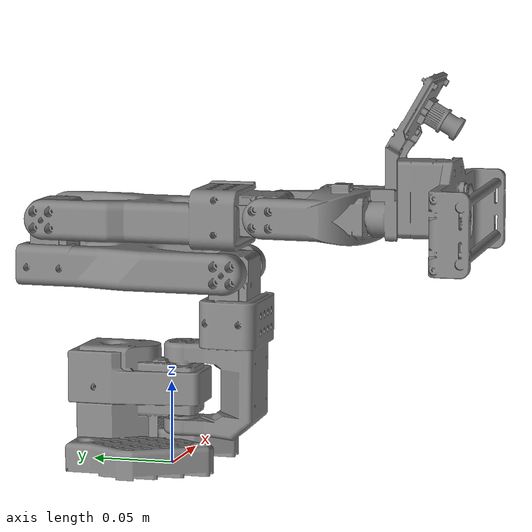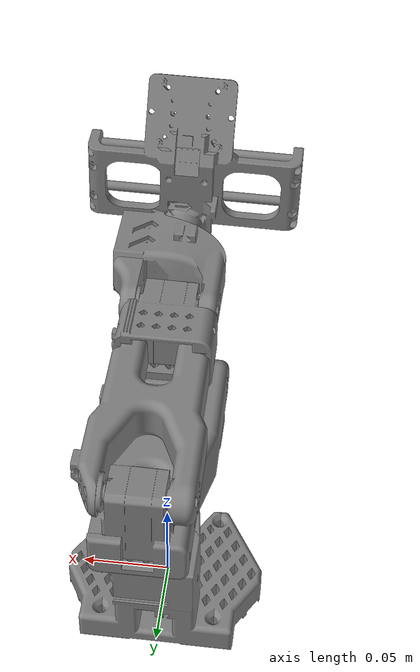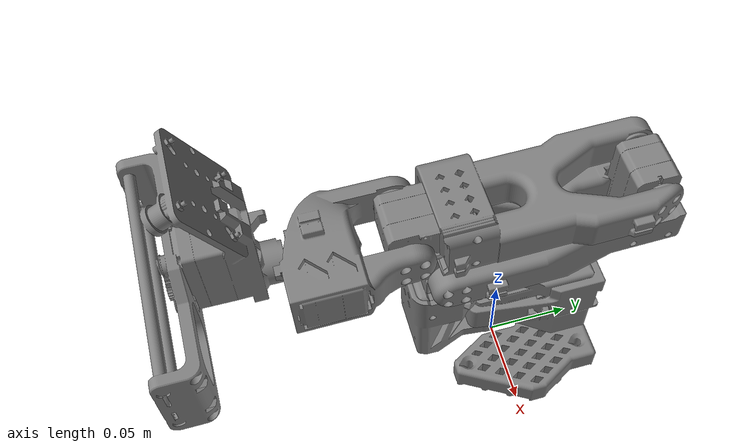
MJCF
<mujoco model="so_101">
  <compiler angle="radian" meshdir="meshes/arm/"/>

  <asset>
    <mesh name="base_link" content_type="model/stl" file="base_link.stl" scale="0.001 0.001 0.001"/>
    <mesh name="link1_1" content_type="model/stl" file="link1_1.stl" scale="0.001 0.001 0.001"/>
    <mesh name="link2_1" content_type="model/stl" file="link2_1.stl" scale="0.001 0.001 0.001"/>
    <mesh name="link3_1" content_type="model/stl" file="link3_1.stl" scale="0.001 0.001 0.001"/>
    <mesh name="link4_1" content_type="model/stl" file="link4_1.stl" scale="0.001 0.001 0.001"/>
    <mesh name="link5_1" content_type="model/stl" file="link5_1.stl" scale="0.001 0.001 0.001"/>
  </asset>

  <worldbody>
    <geom type="mesh" mesh="base_link"/>
    <body name="link1_1" pos="-9.9e-05 -0.007243 0.027983">
      <inertial pos="-6.74952e-05 -0.0304904 0.0537666" quat="0.741279 0.0624238 -0.0421672 0.666956" mass="0.241847" diaginertia="0.00020148 0.00019497 9.255e-05"/>
      <joint name="base_link_to_link1" pos="0 0 0" axis="0 -0.008727 0.999962" range="-2.0944 2.0944" actuatorfrcrange="-1.5 1.5" damping="0.1" frictionloss="0.05"/>
      <geom pos="9.9e-05 0.007243 -0.027983" type="mesh" mesh="link1_1"/>
      <body name="link2_1" pos="0.020891 -0.031313 0.091377">
        <inertial pos="-0.0183886 0.0626104 0.00101204" quat="0.487483 0.509946 -0.505248 0.49703" mass="0.986114" diaginertia="0.00163814 0.00133618 0.000430679"/>
        <joint name="link1_to_link2" pos="0 0 0" axis="-0.999962 -0.008726 -7.6e-05" range="-3.22886 0.174533" actuatorfrcrange="-1.5 1.5" damping="0.1" frictionloss="0.05"/>
        <geom pos="-0.020792 0.038556 -0.11936" quat="1 0 0 0" type="mesh" mesh="link2_1"/>
        <body name="link3_1" pos="0.00151 0.112435 0.029417">
          <inertial pos="-0.0177515 -0.0654403 -0.000172961" quat="0.496869 0.499452 -0.493993 0.509548" mass="0.903115" diaginertia="0.0014402 0.00119426 0.000363546"/>
          <joint name="link2_to_link3" pos="0 0 0" axis="-0.999924 -0.00865 -0.008802" range="0 3.31613" actuatorfrcrange="-1.5 1.5" damping="0.1" frictionloss="0.05"/>
          <geom pos="-0.022302 -0.073879 -0.148777" quat="1 0 0 0" type="mesh" mesh="link3_1"/>
          <body name="link4_1" pos="0.00208 -0.134461 0.00412">
            <inertial pos="-0.0143886 -0.0288027 -0.000205619" quat="0.220056 0.668013 -0.224508 0.674485" mass="0.317735" diaginertia="0.000239011 0.000171595 0.000119394"/>
            <joint name="link3_to_link4" pos="0 0 0" axis="-0.999848 0.000153 -0.017451" range="-1.65806 1.65806" actuatorfrcrange="-1.5 1.5" damping="0.1" frictionloss="0.05"/>
            <geom pos="-0.024382 0.060582 -0.152897" quat="1 0 0 0" type="mesh" mesh="link4_1"/>
            <body name="link5_1" pos="-0.01732 -0.060045 -0.000831">
              <inertial pos="-0.000583929 -0.0415391 0.0150558" quat="0.577692 0.411217 0.560252 0.428124" mass="0.556172" diaginertia="0.00100896 0.000711206 0.000578834"/>
              <joint name="link4_to_link5" pos="0 0 0" axis="-1e-06 0.999961 0.008803" range="-4.27606 1.5708" actuatorfrcrange="-1.5 1.5" damping="0.1" frictionloss="0.05"/>
              <geom pos="-0.007062 0.120627 -0.152066" quat="1 0 0 0" type="mesh" mesh="link5_1"/>
            </body>
          </body>
        </body>
      </body>
    </body>
  </worldbody>
</mujoco>
